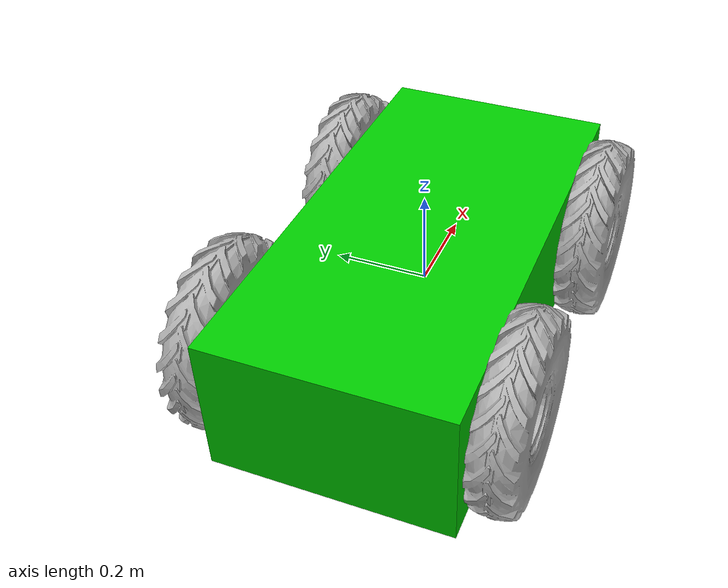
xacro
<?xml version="1.0"?>
<robot name="robot1" xmlns:xacro="http://ros.org/wiki/xacro">

    <xacro:arg name="gazebo" default="false"/>
    <xacro:property name="gazebo" value="$(arg gazebo)"/>

    <xacro:include filename="$(find urdf_example1)/description/urdf/macros/materials.xacro"/>
    <xacro:include filename="$(find urdf_example1)/description/urdf/macros/base.xacro"/>
    <xacro:include filename="$(find urdf_example1)/description/urdf/macros/wheel.xacro"/>
    <xacro:include filename="$(find urdf_example1)/description/urdf/macros/gazebo_top_level_plugins.xacro"/>

    <!--base dimensions (length, width and height) and mass-->
    <xacro:property name="bl" value="1"/>
    <xacro:property name="bw" value="0.5"/>
    <xacro:property name="bh" value="0.3"/>
    <xacro:property name="bm" value="10"/>

    <!--wheel dimensions (radius and thickness) and mass-->
    <xacro:property name="wr" value="0.2"/>
    <xacro:property name="wt" value="0.1"/>
    <xacro:property name="wm" value="1"/>

    <!--create base-->
    <xacro:base/>

    <!--create wheels-->
    <xacro:wheel name="front_right" x="${bl/2-wr}" y="${-(bw+wt)/2}"/>
    <xacro:wheel name="back_right" x="${-bl/2+wr}" y="${-(bw+wt)/2}"/>
    <xacro:wheel name="back_left" x="${-bl/2+wr}" y="${(bw+wt)/2}"/>
    <xacro:wheel name="front_left" x="${bl/2-wr}" y="${(bw+wt)/2}"/>

    <!--Add gazebo plugins, if requested-->
    <xacro:if value="${gazebo}">
        <xacro:joints_publisher/>
        <xacro:skid_steer/>
    </xacro:if>

</robot>

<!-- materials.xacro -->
<robot>

	<material name="black">
		<color rgba="0.0 0.0 0.0 1.0"/>
	</material>

	<material name="blue">
		<color rgba="0.0 0.0 0.8 1.0"/>
	</material>

	<material name="green">
		<color rgba="0.0 0.8 0.0 1.0"/>
	</material>

	<material name="gray">
		<color rgba="0.7 0.7 0.7 1.0"/>
	</material>

	<material name="darkgray">
		<color rgba="0.3 0.3 0.3 1.0"/>
	</material>

	<material name="red">
		<color rgba="0.8 0.0 0.0 1.0"/>
	</material>

	<material name="white">
		<color rgba="1.0 1.0 1.0 1.0"/>
	</material>

	<material name="yellow">
		<color rgba="0.8 0.8 0.0 1.0"/>
	</material>

</robot>

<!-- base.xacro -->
<robot xmlns:xacro="http://ros.org/wiki/xacro">

    <!--params are: base length, width and height-->
    <xacro:macro name="base" params="bl:=^ bw:=^ bh:=^ bm:=^ gazebo:=^">
        <link name="base_link">
            <visual>
                <geometry>
                    <box size="${bl} ${bw} ${bh}"/>
                </geometry>
                <material name="green"/>
            </visual>
            <collision>
                <geometry>
                    <box size="${bl} ${bw} ${bh}"/>
                </geometry>
            </collision>
            <inertial>
                <mass value="${bm}"/>
                <inertia ixx="${bm*(bw**2+bh**2)/12}" ixy="0.0" ixz="0.0" iyy="${bm*(bl**2+bh**2)/12}" iyz="0.0" izz="${bm*(bl**2+bw**2)/12}"/>
            </inertial>
        </link>

        <!--Add gazebo references, if requested-->
        <xacro:if value="${gazebo}">
            <gazebo reference="base_link">
                <material>Gazebo/Green</material>
            </gazebo>
        </xacro:if>

    </xacro:macro>

</robot>

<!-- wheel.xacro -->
<robot xmlns:xacro="http://ros.org/wiki/xacro">

    <!--wheel params are: (distinctive part of) link name, 3d position, radius, thickness and mass-->
    <xacro:macro name="wheel" params="name x:=0 y:=0 z:=0 wr:=^ wt:=^ wm:=^ gazebo:=^">
        <joint name="base_to_${name}_wheel" type="continuous">
            <parent link="base_link"/>
            <child link="${name}_wheel"/>
            <origin xyz="${x} ${y} ${z}"/>
            <axis xyz="0 1 0"/>
        </joint>

        <link name="${name}_wheel">
            <visual>
                <origin xyz="0 0 0" rpy="${pi/2} 0 0"/>
                <geometry>
                    <mesh filename="package://urdf_example1/description/meshes/monster_wheel.stl" scale="${2*wr} ${2*wr} ${wt}"/>
                </geometry>
                <material name="gray"/>
            </visual>
            <collision>
                <origin xyz="0 0 0" rpy="${pi/2} 0 0"/>
                <geometry>
                    <cylinder length="${wt}" radius="${wr}"/>
                </geometry>
            </collision>
            <inertial>
                <mass value="${wm}"/>
                <inertia ixx="${(wm*wr**2)/2}" ixy="0.0" ixz="0.0" iyy="${wm*(3*wr**2+wt**2)/12}" iyz="0.0" izz="${wm*(3*wr**2+wt**2)/12}"/>
            </inertial>
        </link>

        <!--Add gazebo references, if requested-->
        <xacro:if value="${gazebo}">
            <gazebo reference="${name}_wheel">
                <mu1>10.0</mu1>
                <mu2>10.0</mu2>
                <kp>1000000.0</kp>
                <kd>1.0</kd>
                <material>Gazebo/Grey</material>
            </gazebo>
        </xacro:if>

    </xacro:macro>

</robot>
